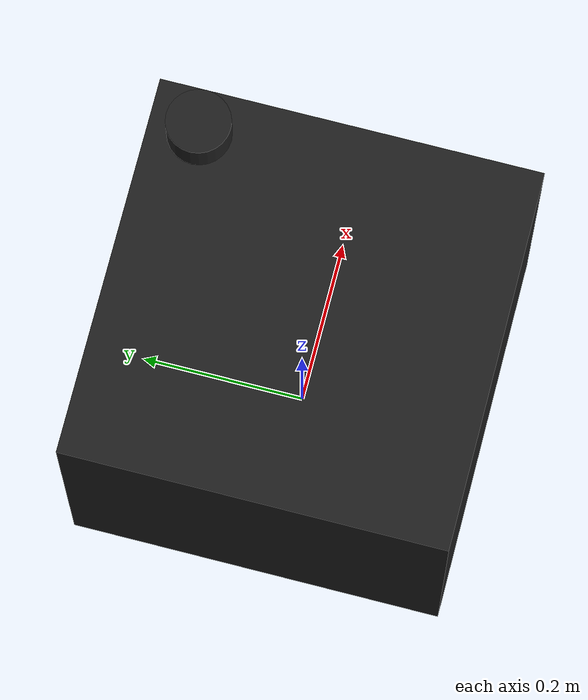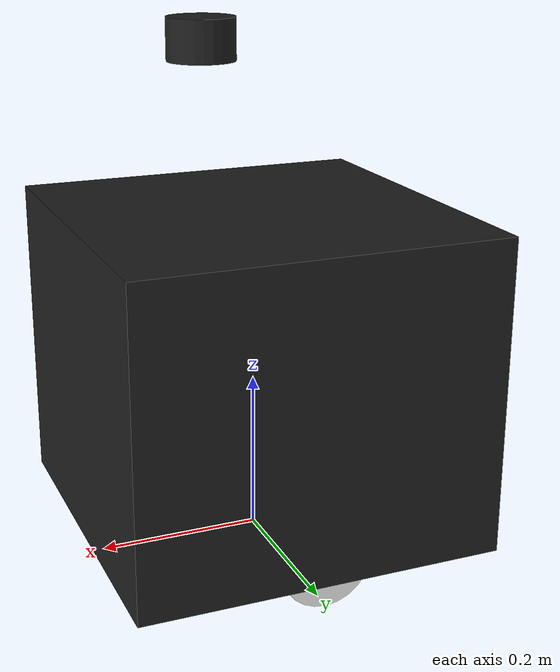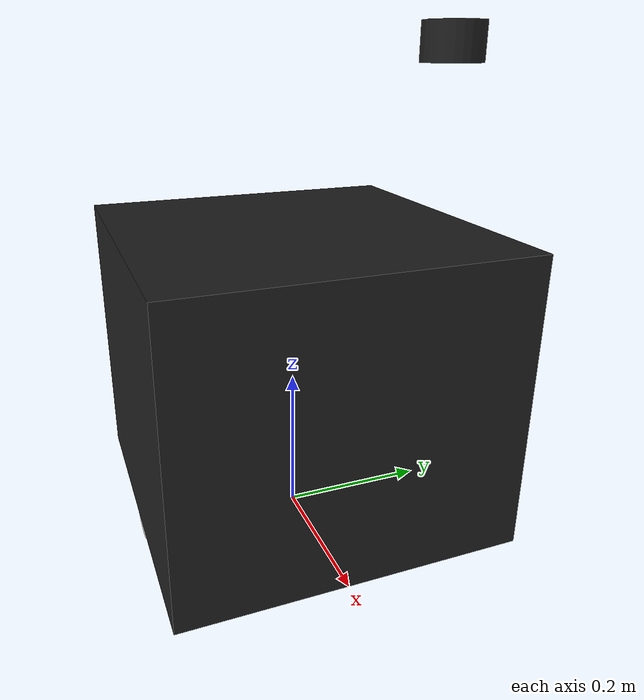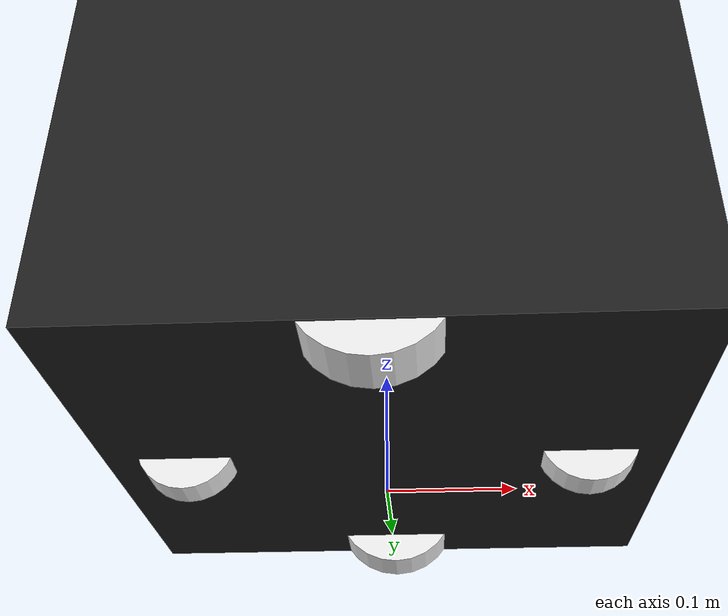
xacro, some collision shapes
<?xml version="1.0" ?>
<robot name="turtlebot3_flushbot" xmlns:xacro="http://ros.org/wiki/xacro">
  <xacro:include filename="$(find turtlebot3_description)/urdf/common_properties.xacro"/>
  <xacro:include filename="$(find turtlebot3_description)/urdf/turtlebot3_flushbot.gazebo.xacro"/>

<!-- flushbot center -->
  <link name="base_footprint"/>

<!-- height from the ground -->
  <joint name="base_joint" type="fixed">
    <parent link="base_footprint"/>
    <child link="base_link"/>
    <origin xyz="0.0 0.0 0.0555" rpy="0 0 0"/>
  </joint>

<!-- center of the wheel shaft -->
  <link name="base_link">
    <visual>
      <geometry>
      	<box size="0.45 0.45 0.39"/>
      </geometry>
      <origin xyz="0 0 0.1645" rpy="0 0 0"/>
      <material name="light_black"/>
    </visual>

<!-- setting collision area -->
    <collision>
      <geometry>
        <box size="0.45 0.45 0.39"/>
      </geometry>
      <origin xyz="0.0 0.0 0.1645" rpy="0 0 0"/>
    </collision>

    <inertial>
      <origin xyz="0 0 0" rpy="0 0 0"/>
      <mass value="5"/>
      <inertia
          ixx="0.1" ixy="0" ixz="0"
          iyy="0.1" iyz="0"
          izz="0.1"
      />
    </inertial>
  </link>

<!-- caster wheel -->
  <joint name="caster_back_joint" type="fixed">
    <parent link="base_link"/>
    <child link="caster_back_link"/>
    <origin xyz="-0.16 0 -0.0155" rpy="0 0 0"/>
  </joint>

  <link name="caster_back_link">
    <visual>
      <origin xyz="0 0 0" rpy="1.57075 0 0"/>
      <geometry>
       <cylinder radius="0.04" length="0.03"/>
       </geometry>
       <material name="white"/>
    </visual>

    <collision>
      <origin xyz="0 0 0" rpy="1.57075 0 0"/>
      <geometry>
        <cylinder radius="0.04" length="0.03"/>
      </geometry>
    </collision>

    <inertial>
      <origin xyz="0 0 0" />
      <mass value="0.005" />
      <inertia ixx="0.001" ixy="0.0" ixz="0.0"
               iyy="0.001" iyz="0.0"
               izz="0.001" />
    </inertial>
  </link>

  <joint name="caster_front_joint" type="fixed">
    <parent link="base_link"/>
    <child link="caster_front_link"/>
    <origin xyz="0.16 0 -0.0155" rpy="0 0 0"/>
  </joint>

  <link name="caster_front_link">
    <visual>
      <origin xyz="0 0 0" rpy="1.57075 0 0"/>
      <geometry>
       <cylinder radius="0.04" length="0.03"/>
       </geometry>
       <material name="white"/>
    </visual>

    <collision>
      <origin xyz="0 0 0" rpy="1.57075 0 0"/>
      <geometry>
        <cylinder radius="0.04" length="0.03"/>
      </geometry>
    </collision>

    <inertial>
      <origin xyz="0 0 0" />
      <mass value="0.005" />
      <inertia ixx="0.001" ixy="0.0" ixz="0.0"
               iyy="0.001" iyz="0.0"
               izz="0.001" />
    </inertial>
  </link>

<!-- left wheel -->
  <joint name="wheel_left_joint" type="continuous">
    <parent link="base_link"/>
    <child link="wheel_left_link"/>
    <origin xyz="0.0 0.201 0.0" rpy="0 0 0"/>
    <axis xyz="0 1 0"/>
  </joint>

  <link name="wheel_left_link">
    <visual>
      <origin xyz="0 0 0" rpy="1.57075 0 0"/>
      <geometry>
        <cylinder radius="0.0555" length="0.044"/>
      </geometry>
      <material name="white"/>
    </visual>

    <collision>
      <origin xyz="0 0 0" rpy="0 0 0"/>
      <geometry>
        <cylinder radius="0.0555" length="0.044"/>
      </geometry>
    </collision>

    <inertial>
      <origin xyz="0 0 0" />
      <mass value="0.5" />
      <inertia ixx="0.1" ixy="0" ixz="0"
               iyy="0.1" iyz="0"
               izz="0.1" />
      </inertial>
  </link>

<!-- right wheel -->
  <joint name="wheel_right_joint" type="continuous">
    <parent link="base_link"/>
    <child link="wheel_right_link"/>
    <origin xyz="0.0 -0.201 0.0" rpy="0 0 0"/>
    <axis xyz="0 1 0"/>
  </joint>

  <link name="wheel_right_link">
    <visual>
      <origin xyz="0 0 0" rpy="1.57075 0 0"/>
      <geometry>
        <cylinder radius="0.0555" length="0.044"/>
      </geometry>
      <material name="white"/>
    </visual>

    <collision>
      <origin xyz="0 0 0" rpy="0 0 0"/>
      <geometry>
        <cylinder radius="0.0555" length="0.044"/>
      </geometry>
    </collision>

    <inertial>
      <origin xyz="0 0 0" />
      <mass value="0.5" />
      <inertia
          ixx="0.1" ixy="0" ixz="0"
          iyy="0.1" iyz="0"
          izz="0.1"
      />
      </inertial>
  </link>

<!-- imu place -->
  <joint name="imu_joint" type="fixed">
    <parent link="base_link"/>
    <child link="imu_link"/>
    <origin xyz="0.08 0.08 0.0845" rpy="0 0 0"/>
  </joint>

  <link name="imu_link"/>

  <joint name="scan_joint" type="fixed">
    <parent link="base_link"/>
    <child link="base_scan"/>
    <origin xyz="0.115 0.145 0.58" rpy="0 0 0"/>
  </joint>

<!-- sensor place -->
  <link name="base_scan">
    <visual>
      <origin xyz="0 0 0.0" rpy="0 0 3.141"/>
      <geometry>
        <mesh filename="package://turtlebot3_description/meshes/sensors/lds.stl" scale="0.001 0.001 0.001"/>
      </geometry>
      <material name="dark"/>
    </visual>

    <collision>
      <origin xyz="0 0 0" rpy="0 0 0"/>
      <geometry>
        <cylinder length="0.044" radius="0.036"/>
      </geometry>
    </collision>

    <inertial>
      <mass value="0.114" />
      <origin xyz="0 0 0" />
      <inertia ixx="0.001" ixy="0.0" ixz="0.0"
               iyy="0.001" iyz="0.0"
               izz="0.001" />
    </inertial>
  </link>

</robot>
